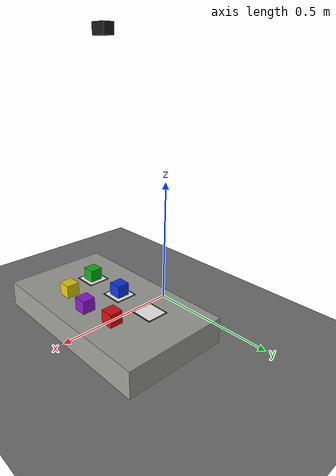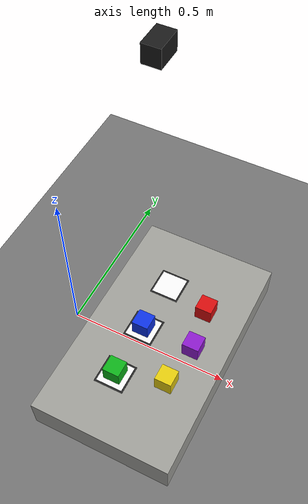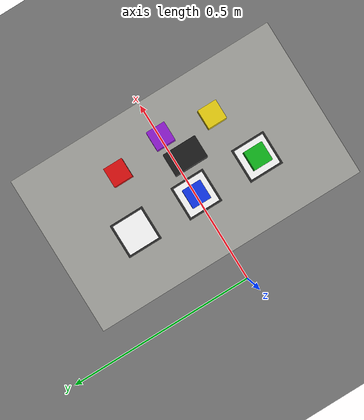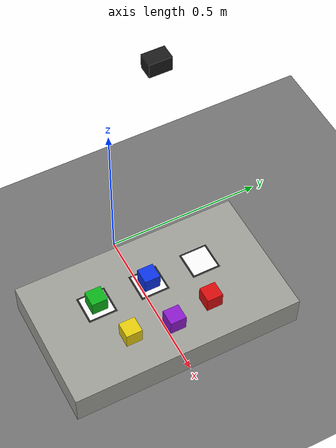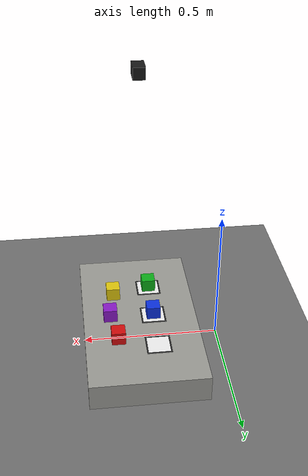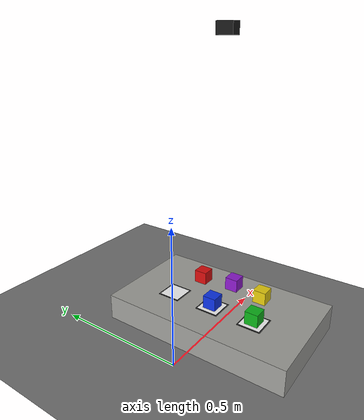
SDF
<?xml version="1.0" ?>
<sdf version="1.6">
  <world name="tabletop">
    <physics name="1ms" type="ignored">
      <max_step_size>0.001</max_step_size>
      <real_time_factor>1.0</real_time_factor>
    </physics>
    <plugin
      filename="ignition-gazebo-physics-system"
      name="gz::sim::systems::Physics">
    </plugin>
    <plugin
      filename="ignition-gazebo-user-commands-system"
      name="gz::sim::systems::UserCommands">
    </plugin>
    <plugin
      filename="ignition-gazebo-scene-broadcaster-system"
      name="gz::sim::systems::SceneBroadcaster">
    </plugin>
    <!-- Renders the camera sensors below. ogre (v1): ogre2 cannot create its
         render window off the main thread on macOS when Gazebo runs headless. -->
    <plugin
      filename="ignition-gazebo-sensors-system"
      name="gz::sim::systems::Sensors">
      <render_engine>ogre</render_engine>
    </plugin>

    <scene>
      <ambient>0.6 0.6 0.6 1</ambient>
      <background>0.85 0.88 0.92 1</background>
      <shadows>false</shadows>
    </scene>

    <light type="directional" name="sun">
      <cast_shadows>false</cast_shadows>
      <pose>0 0 10 0 0 0</pose>
      <diffuse>0.8 0.8 0.8 1</diffuse>
      <specular>0.2 0.2 0.2 1</specular>
      <attenuation>
        <range>1000</range>
        <constant>0.9</constant>
        <linear>0.01</linear>
        <quadratic>0.001</quadratic>
      </attenuation>
      <direction>-0.3 0.1 -0.9</direction>
    </light>

    <model name="ground_plane">
      <static>true</static>
      <link name="link">
        <collision name="collision">
          <geometry>
            <plane>
              <normal>0 0 1</normal>
              <size>100 100</size>
            </plane>
          </geometry>
        </collision>
        <visual name="visual">
          <geometry>
            <plane>
              <normal>0 0 1</normal>
              <size>100 100</size>
            </plane>
          </geometry>
          <material>
            <ambient>0.45 0.45 0.45 1</ambient>
            <diffuse>0.45 0.45 0.45 1</diffuse>
          </material>
        </visual>
      </link>
    </model>

    <model name="table">
      <static>true</static>
      <pose>0.29 0 0.05 0 0 0</pose>
      <link name="link">
        <collision name="collision">
          <geometry>
            <box><size>0.42 0.72 0.10</size></box>
          </geometry>
        </collision>
        <visual name="visual">
          <geometry>
            <box><size>0.42 0.72 0.10</size></box>
          </geometry>
          <material>
            <ambient>0.62 0.62 0.6 1</ambient>
            <diffuse>0.62 0.62 0.6 1</diffuse>
          </material>
        </visual>
      </link>
    </model>

    <model name="zone_a_marker">
      <static>true</static>
      <pose>0.24 0.17 0.1005 0 0 0</pose>
      <link name="link">
        <visual name="border">
          <geometry><box><size>0.09 0.09 0.001</size></box></geometry>
          <material><ambient>0.15 0.15 0.15 1</ambient><diffuse>0.15 0.15 0.15 1</diffuse></material>
        </visual>
        <visual name="inner">
          <pose>0 0 0.0006 0 0 0</pose>
          <geometry><box><size>0.08 0.08 0.001</size></box></geometry>
          <material><ambient>0.97 0.97 0.97 1</ambient><diffuse>0.97 0.97 0.97 1</diffuse></material>
        </visual>
      </link>
    </model>

    <model name="zone_b_marker">
      <static>true</static>
      <pose>0.24 0.0 0.1005 0 0 0</pose>
      <link name="link">
        <visual name="border">
          <geometry><box><size>0.09 0.09 0.001</size></box></geometry>
          <material><ambient>0.15 0.15 0.15 1</ambient><diffuse>0.15 0.15 0.15 1</diffuse></material>
        </visual>
        <visual name="inner">
          <pose>0 0 0.0006 0 0 0</pose>
          <geometry><box><size>0.08 0.08 0.001</size></box></geometry>
          <material><ambient>0.97 0.97 0.97 1</ambient><diffuse>0.97 0.97 0.97 1</diffuse></material>
        </visual>
      </link>
    </model>

    <model name="zone_c_marker">
      <static>true</static>
      <pose>0.24 -0.17 0.1005 0 0 0</pose>
      <link name="link">
        <visual name="border">
          <geometry><box><size>0.09 0.09 0.001</size></box></geometry>
          <material><ambient>0.15 0.15 0.15 1</ambient><diffuse>0.15 0.15 0.15 1</diffuse></material>
        </visual>
        <visual name="inner">
          <pose>0 0 0.0006 0 0 0</pose>
          <geometry><box><size>0.08 0.08 0.001</size></box></geometry>
          <material><ambient>0.97 0.97 0.97 1</ambient><diffuse>0.97 0.97 0.97 1</diffuse></material>
        </visual>
      </link>
    </model>

    <model name="red_cube">
      <pose>0.38 0.13 0.125 0 0 0</pose>
      <link name="link">
        <inertial><mass>0.1</mass><inertia><ixx>4.2e-5</ixx><iyy>4.2e-5</iyy><izz>4.2e-5</izz></inertia></inertial>
        <collision name="collision">
          <geometry><box><size>0.05 0.05 0.05</size></box></geometry>
          <surface><friction><ode><mu>1.0</mu><mu2>1.0</mu2></ode></friction></surface>
        </collision>
        <visual name="visual">
          <geometry><box><size>0.05 0.05 0.05</size></box></geometry>
          <material><ambient>0.85 0.05 0.05 1</ambient><diffuse>0.85 0.05 0.05 1</diffuse></material>
        </visual>
      </link>
    </model>

    <model name="yellow_cube">
      <pose>0.38 -0.13 0.125 0 0 0</pose>
      <link name="link">
        <inertial><mass>0.1</mass><inertia><ixx>4.2e-5</ixx><iyy>4.2e-5</iyy><izz>4.2e-5</izz></inertia></inertial>
        <collision name="collision">
          <geometry><box><size>0.05 0.05 0.05</size></box></geometry>
          <surface><friction><ode><mu>1.0</mu><mu2>1.0</mu2></ode></friction></surface>
        </collision>
        <visual name="visual">
          <geometry><box><size>0.05 0.05 0.05</size></box></geometry>
          <material><ambient>0.9 0.8 0.05 1</ambient><diffuse>0.9 0.8 0.05 1</diffuse></material>
        </visual>
      </link>
    </model>

    <model name="blue_cube">
      <pose>0.24 0.0 0.125 0 0 0</pose>
      <link name="link">
        <inertial><mass>0.1</mass><inertia><ixx>4.2e-5</ixx><iyy>4.2e-5</iyy><izz>4.2e-5</izz></inertia></inertial>
        <collision name="collision">
          <geometry><box><size>0.05 0.05 0.05</size></box></geometry>
          <surface><friction><ode><mu>1.0</mu><mu2>1.0</mu2></ode></friction></surface>
        </collision>
        <visual name="visual">
          <geometry><box><size>0.05 0.05 0.05</size></box></geometry>
          <material><ambient>0.05 0.2 0.9 1</ambient><diffuse>0.05 0.2 0.9 1</diffuse></material>
        </visual>
      </link>
    </model>

    <model name="green_cube">
      <pose>0.24 -0.17 0.125 0 0 0</pose>
      <link name="link">
        <inertial><mass>0.1</mass><inertia><ixx>4.2e-5</ixx><iyy>4.2e-5</iyy><izz>4.2e-5</izz></inertia></inertial>
        <collision name="collision">
          <geometry><box><size>0.05 0.05 0.05</size></box></geometry>
          <surface><friction><ode><mu>1.0</mu><mu2>1.0</mu2></ode></friction></surface>
        </collision>
        <visual name="visual">
          <geometry><box><size>0.05 0.05 0.05</size></box></geometry>
          <material><ambient>0.05 0.7 0.1 1</ambient><diffuse>0.05 0.7 0.1 1</diffuse></material>
        </visual>
      </link>
    </model>

    <model name="purple_cube">
      <pose>0.40 0.0 0.125 0 0 0</pose>
      <link name="link">
        <inertial><mass>0.1</mass><inertia><ixx>4.2e-5</ixx><iyy>4.2e-5</iyy><izz>4.2e-5</izz></inertia></inertial>
        <collision name="collision">
          <geometry><box><size>0.05 0.05 0.05</size></box></geometry>
          <surface><friction><ode><mu>1.0</mu><mu2>1.0</mu2></ode></friction></surface>
        </collision>
        <visual name="visual">
          <geometry><box><size>0.05 0.05 0.05</size></box></geometry>
          <material><ambient>0.55 0.1 0.8 1</ambient><diffuse>0.55 0.1 0.8 1</diffuse></material>
        </visual>
      </link>
    </model>

    <model name="overhead_camera">
      <static>true</static>
      <pose>0.29 0 1.05 0 1.5708 0</pose>
      <link name="link">
        <visual name="body">
          <geometry><box><size>0.04 0.06 0.04</size></box></geometry>
          <material><ambient>0.1 0.1 0.1 1</ambient><diffuse>0.1 0.1 0.1 1</diffuse></material>
        </visual>
        <sensor name="overhead_camera" type="camera">
          <camera>
            <horizontal_fov>0.8</horizontal_fov>
            <image>
              <width>640</width>
              <height>480</height>
              <format>R8G8B8</format>
            </image>
            <clip><near>0.05</near><far>5</far></clip>
          </camera>
          <always_on>1</always_on>
          <update_rate>5</update_rate>
          <topic>overhead_camera/image</topic>
        </sensor>
      </link>
    </model>

    <!-- Side-view camera for the demo video only (not used for perception). -->
    <model name="video_camera">
      <static>true</static>
      <pose>0.95 -0.62 0.72 0 0.52 2.42</pose>
      <link name="link">
        <sensor name="video_camera" type="camera">
          <camera>
            <horizontal_fov>0.9</horizontal_fov>
            <image>
              <width>640</width>
              <height>480</height>
              <format>R8G8B8</format>
            </image>
            <clip><near>0.05</near><far>5</far></clip>
          </camera>
          <always_on>1</always_on>
          <update_rate>10</update_rate>
          <topic>video_camera/image</topic>
        </sensor>
      </link>
    </model>

  </world>
</sdf>
